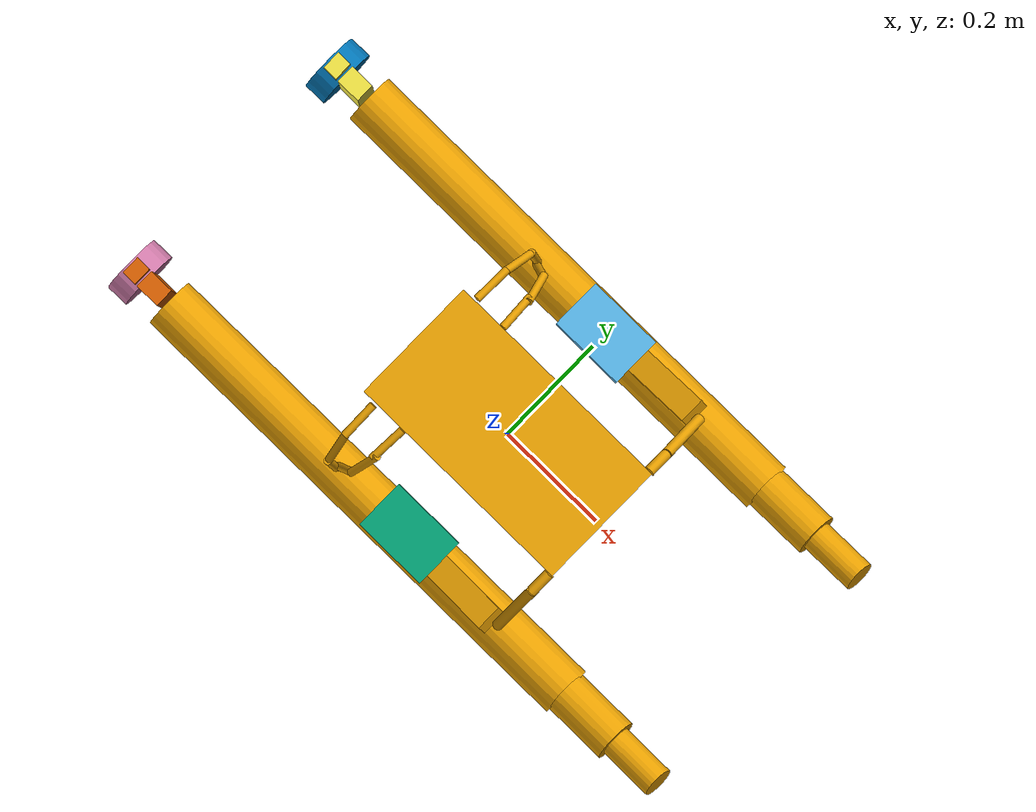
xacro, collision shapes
<?xml version="1.0"?>
<robot xmlns:xacro="http://ros.org/wiki/xacro" name="kaboat_hull">

  <!-- ===== 크기 파라미터 ===== -->
  <xacro:property name="target_length" value="1.1"/>   <!-- 원하는 세로 길이 [m] -->
  <xacro:property name="base_length"   value="4.9"/>   <!-- VRX WAM-V 원본 길이 [m] (고정) -->
  <xacro:property name="s"             value="${target_length / base_length}"/>

  <xacro:property name="mass_factor" value="1.0"/>

  <xacro:property name="namespace" value="wamv" scope="global"/>

  <!-- ===================================================================
       선체 base_link (충돌형상은 원본을 s 배로 축소)
  ==================================================================== -->
  <xacro:macro name="main_collisions" params="prefix reflect:=1">
    <!-- Main float -->
    <collision name="${prefix}_float">
      <origin xyz="${-0.4*s} ${1.03*reflect*s} ${0.2*s}" rpy="${0*reflect} 1.57 0" />
      <geometry><cylinder length="${4*s}" radius="${0.2*s}" /></geometry>
    </collision>
    <collision name="${prefix}_mid_float">
      <origin xyz="${1.85*s} ${1.03*reflect*s} ${0.3*s}" rpy="${0*reflect} 1.38 0" />
      <geometry><cylinder length="${0.5*s}" radius="${0.17*s}" /></geometry>
    </collision>
    <collision name="${prefix}_front_float">
      <origin xyz="${2.3*s} ${1.03*reflect*s} ${0.4*s}" rpy="${0*reflect} 1.3 0" />
      <geometry><cylinder length="${0.45*s}" radius="${0.12*s}" /></geometry>
    </collision>
    <!-- Front beam -->
    <collision name="front_${prefix}_beam_lower">
      <origin xyz="${0.9*s} ${0.85*reflect*s} ${1*s}" rpy="${0.78*reflect} 0 0" />
      <geometry><cylinder length="${0.5*s}" radius="${0.04*s}" /></geometry>
    </collision>
    <collision name="front_${prefix}_beam_upper">
      <origin xyz="${0.9*s} ${0.6*reflect*s} ${1.18*s}" rpy="${1.35*reflect} 0 0" />
      <geometry><cylinder length="${0.2*s}" radius="${0.04*s}" /></geometry>
    </collision>
    <!-- Mid beam -->
    <collision name="mid_${prefix}_beam_lower">
      <origin xyz="${-0.65*s} ${0.99*reflect*s} ${0.7*s}" rpy="${0.1*reflect} 0.25 0" />
      <geometry><cylinder length="${0.45*s}" radius="${0.03*s}" /></geometry>
    </collision>
    <collision name="mid_${prefix}_beam_medium">
      <origin xyz="${-0.57*s} ${0.87*reflect*s} ${1.05*s}" rpy="${0.75*reflect} 0.25 0" />
      <geometry><cylinder length="${0.32*s}" radius="${0.03*s}" /></geometry>
    </collision>
    <collision name="mid_${prefix}_beam_upper">
      <origin xyz="${-0.55*s} ${0.65*reflect*s} ${1.17*s}" rpy="${1.35*reflect} 0.25 0" />
      <geometry><cylinder length="${0.3*s}" radius="${0.03*s}" /></geometry>
    </collision>
    <!-- Rear beam -->
    <collision name="rear_${prefix}_beam_lower">
      <origin xyz="${-0.74*s} ${1.03*reflect*s} ${0.7*s}" rpy="${0*reflect} -0.15 0" />
      <geometry><cylinder length="${0.45*s}" radius="${0.03*s}" /></geometry>
    </collision>
    <collision name="rear_${prefix}_beam_medium">
      <origin xyz="${-0.79*s} ${0.91*reflect*s} ${1.05*s}" rpy="${0.75*reflect} -0.15 0" />
      <geometry><cylinder length="${0.32*s}" radius="${0.03*s}" /></geometry>
    </collision>
    <collision name="rear_${prefix}_beam_upper">
      <origin xyz="${-0.81*s} ${0.67*reflect*s} ${1.18*s}" rpy="${1.45*reflect} -0.15 0" />
      <geometry><cylinder length="${0.3*s}" radius="${0.03*s}" /></geometry>
    </collision>
    <!-- Joint -->
    <collision name="${prefix}_joint">
      <origin xyz="${0.58*s} ${1.03*reflect*s} ${0.6*s}" rpy="${0*reflect} -0.6 0" />
      <geometry><box size="${0.65*s} ${0.2*s} ${0.1*s}" /></geometry>
    </collision>
  </xacro:macro>

  <link name="${namespace}/base_link">
    <visual>
      <geometry>
        <mesh filename="package://wamv_description/models/WAM-V-Base/mesh/WAM-V-Base.dae"
              scale="${s} ${s} ${s}"/>
      </geometry>
    </visual>

    <xacro:main_collisions prefix="left"  reflect="1" />
    <xacro:main_collisions prefix="right" reflect="-1" />

    <!-- Top base -->
    <collision name="top_base">
      <origin xyz="0 0 ${1.25*s}" rpy="0 0 0" />
      <geometry><box size="${1.85*s} ${1*s} ${0.1*s}" /></geometry>
    </collision>

    <inertial>
      <mass value="${180.0 * s**3 * mass_factor}"/>
      <inertia ixx="${120.0 * s**5}" ixy="0.0" ixz="0.0"
               iyy="${393.0 * s**5}" iyz="0.0" izz="${446.0 * s**5}"/>
    </inertial>
  </link>

  <gazebo>
    <enable_wind>true</enable_wind>
  </gazebo>

  <gazebo reference="${namespace}/base_link">
    <visual>
      <material>
        <diffuse>1.0 1.0 1.0</diffuse>
        <specular>1.0 1.0 1.0</specular>
        <pbr>
          <metal>
            <albedo_map>model://wamv_description/models/WAM-V-Base/mesh/WAM-V_Albedo.png</albedo_map>
            <normal_map>model://wamv_description/models/WAM-V-Base/mesh/WAM-V_Normal.png</normal_map>
            <roughness_map>model://wamv_description/models/WAM-V-Base/mesh/WAM-V_Roughness.png</roughness_map>
            <metalness_map>model://wamv_description/models/WAM-V-Base/mesh/WAM-V_Metalness.png</metalness_map>
          </metal>
        </pbr>
      </material>
    </visual>

    <sensor type="contact" name="contact_sensor">
      <contact>
        <collision>${namespace}/base_link_fixed_joint_lump__top_base_collision_24</collision>
        <collision>${namespace}/base_link_fixed_joint_lump__left_float_collision</collision>
        <collision>${namespace}/base_link_fixed_joint_lump__left_mid_float_collision_1</collision>
        <collision>${namespace}/base_link_fixed_joint_lump__left_front_float_collision_2</collision>
        <collision>${namespace}/base_link_fixed_joint_lump__right_float_collision_12</collision>
        <collision>${namespace}/base_link_fixed_joint_lump__right_mid_float_collision_13</collision>
        <collision>${namespace}/base_link_fixed_joint_lump__right_front_float_collision_14</collision>
        <topic>/vrx/contacts</topic>
      </contact>
      <always_on>1</always_on>
      <update_rate>5</update_rate>
    </sensor>
  </gazebo>

  <!-- ===================================================================
       배터리 (질량 ∝ s^3, 위치/치수 ∝ s)
  ==================================================================== -->
  <xacro:macro name="battery" params="prefix position">
    <link name="${namespace}/${prefix}_battery_link">
      <visual>
        <origin xyz="0 ${-1.03*s} ${-0.45*s}" rpy="0 0 0"/>
        <geometry>
          <mesh filename="package://vrx_gazebo/models/battery/mesh/battery.dae"
                scale="${s} ${s} ${s}"/>
        </geometry>
      </visual>
      <collision name="${prefix}_battery_collision">
        <origin xyz="0 0 ${0.15*s}" rpy="0 0 0"/>
        <geometry><box size="${0.6*s} ${0.4*s} ${0.31*s}"/></geometry>
      </collision>
      <inertial>
        <origin xyz="0 0 ${0.15*s}" rpy="0 0 0"/>
        <mass value="${23.5 * s**3 * mass_factor}"/>
        <inertia ixx="${0.5015291666666667 * s**5}"
                 iyy="${0.8931958333333333 * s**5}"
                 izz="${1.0183333333333333 * s**5}"
                 ixy="0" ixz="0" iyz="0"/>
      </inertial>
    </link>
    <joint name="${namespace}/${prefix}_chasis_battery_joint" type="fixed">
      <origin xyz="${position}" rpy="0 0 0"/>
      <parent link="${namespace}/base_link"/>
      <child link="${namespace}/${prefix}_battery_link"/>
    </joint>
  </xacro:macro>

  <xacro:battery prefix="left"  position="0 ${1*s} ${0.45*s}"/>
  <xacro:battery prefix="right" position="0 ${-1*s} ${0.45*s}"/>

  <!-- ===================================================================
       엔진 + 프로펠러 (치수/위치 ∝ s, 질량 ∝ s^3, 관성 ∝ s^5)
  ==================================================================== -->
  <xacro:macro name="engine" params="prefix position">
    <link name="${namespace}/${prefix}_engine_link">
      <visual>
        <geometry>
          <mesh filename="package://wamv_description/models/engine/mesh/engine.dae"
                scale="${s} ${s} ${s}"/>
        </geometry>
      </visual>
      <collision name="${prefix}_engine_vertical_axis_collision">
        <origin xyz="${-0.16*s} 0 ${-0.24*s}" rpy="0 0 0" />
        <geometry><box size="${0.2*s} ${0.15*s} ${0.83*s}" /></geometry>
      </collision>
      <collision name="${prefix}_engine_rear_end_collision">
        <origin xyz="${-0.34*s} 0 ${0.12*s}" rpy="0 0 0" />
        <geometry><box size="${0.12*s} ${0.15*s} ${0.12*s}" /></geometry>
      </collision>
      <inertial>
        <mass value="${15 * s**3 * mass_factor}"/>
        <inertia ixx="${0.889245 * s**5}" ixy="0.0" ixz="0.0"
                 iyy="${0.911125 * s**5}" iyz="0.0" izz="${0.078125 * s**5}"/>
      </inertial>
    </link>

    <link name="${namespace}/${prefix}_propeller_link">
      <visual>
        <geometry>
          <mesh filename="package://wamv_description/models/propeller/mesh/propeller.dae"
                scale="${s} ${s} ${s}"/>
        </geometry>
      </visual>
      <collision name="${prefix}_propeller_collision">
        <origin xyz="${-0.08*s} 0 0" rpy="0 1.57 0" />
        <geometry><cylinder length="${0.18*s}" radius="${0.24*s}" /></geometry>
      </collision>
      <inertial>
        <mass value="${0.5 * s**3 * mass_factor}"/>
        <inertia ixx="${0.008545 * s**5}" ixy="0.0" ixz="0.0"
                 iyy="${0.008545 * s**5}" iyz="0.0" izz="${0.0144 * s**5}"/>
      </inertial>
    </link>

    <joint name="${namespace}/${prefix}_chassis_engine_joint" type="revolute">
      <axis xyz="0 0 1"/>
      <limit lower="${-pi}" upper="${pi}" effort="10" velocity="10"/>
      <origin xyz="${position}" rpy="0 0 0"/>
      <parent link="${namespace}/base_link"/>
      <child link="${namespace}/${prefix}_engine_link"/>
    </joint>

    <joint name="${namespace}/${prefix}_engine_propeller_joint" type="continuous">
      <axis rpy="0 0 0" xyz="1 0 0"/>
      <parent link="${namespace}/${prefix}_engine_link"/>
      <child link="${namespace}/${prefix}_propeller_link"/>
      <origin rpy="0 0 0" xyz="${-0.278156*s} 0 ${-0.509371*s}"/>
      <limit effort="100" velocity="100" />
      <dynamics friction="0.05" damping="0.05" />
    </joint>
  </xacro:macro>

  <xacro:engine prefix="left"  position="${-2.373776*s} ${1.027135*s} ${0.318237*s}" />
  <xacro:engine prefix="right" position="${-2.373776*s} ${-1.027135*s} ${0.318237*s}" />

  <!-- ===================================================================
       추력 플러그인 (프로펠러 직경 ∝ s, 최대 추력 ∝ s^2)
  ==================================================================== -->
  <xacro:macro name="thruster_plugin" params="name">
    <gazebo>
      <plugin filename="gz-sim-thruster-system" name="gz::sim::systems::Thruster">
        <joint_name>${namespace}/${name}_engine_propeller_joint</joint_name>
        <thrust_coefficient>0.004422</thrust_coefficient>
        <fluid_density>1000</fluid_density>
        <propeller_diameter>${0.2 * s}</propeller_diameter>
        <velocity_control>true</velocity_control>
        <!-- 원본 max = ((x_u + x_uu*Vmax)*Vmax)/2 = 2353.53; 스케일 × s^2 -->
        <max_thrust_cmd>${(((51.3 + 72.4*7.71667) * 7.71667) / 2) * s**2}</max_thrust_cmd>
        <namespace>${namespace}</namespace>
        <topic>thrusters/${name}/thrust</topic>
        <name>${name}</name>
      </plugin>
      <plugin filename="gz-sim-joint-position-controller-system"
              name="gz::sim::systems::JointPositionController">
        <joint_name>${namespace}/${name}_chassis_engine_joint</joint_name>
        <use_velocity_commands>true</use_velocity_commands>
        <topic>${namespace}/thrusters/${name}/pos</topic>
        <name>${name}</name>
      </plugin>
    </gazebo>
  </xacro:macro>

  <xacro:thruster_plugin name="left" />
  <xacro:thruster_plugin name="right" />

  <!-- ===================================================================
       부력(Surface) + 유체동역학(SimpleHydrodynamics)
  ==================================================================== -->
  <gazebo>
    <!-- Left hull -->
    <plugin filename="libSurface.so" name="vrx::Surface">
      <link_name>${namespace}/base_link</link_name>
      <hull_length>${4.9 * s}</hull_length>
      <hull_radius>${0.213 * s}</hull_radius>
      <fluid_level>0</fluid_level>
      <points>
        <point>${0.6*s} ${1.03*s} 0</point>
        <point>${-1.4*s} ${1.03*s} 0</point>
      </points>
      <wavefield><topic>/vrx/wavefield/parameters</topic></wavefield>
    </plugin>
    <!-- Right hull -->
    <plugin filename="libSurface.so" name="vrx::Surface">
      <link_name>${namespace}/base_link</link_name>
      <hull_length>${4.9 * s}</hull_length>
      <hull_radius>${0.213 * s}</hull_radius>
      <fluid_level>0</fluid_level>
      <points>
        <point>${0.6*s} ${-1.03*s} 0</point>
        <point>${-1.4*s} ${-1.03*s} 0</point>
      </points>
      <wavefield><topic>/vrx/wavefield/parameters</topic></wavefield>
    </plugin>

    <plugin filename="libSimpleHydrodynamics.so" name="vrx::SimpleHydrodynamics">
      <link_name>${namespace}/base_link</link_name>
      <!-- Added mass (원본 0 유지) -->
      <xDotU>0.0</xDotU>
      <yDotV>0.0</yDotV>
      <nDotR>0.0</nDotR>
      <!-- 병진 드래그 ∝ s^2 -->
      <xU>${100.0 * s**2}</xU>
      <xUU>${150.0 * s**2}</xUU>
      <yV>${100.0 * s**2}</yV>
      <yVV>${100.0 * s**2}</yVV>
      <zW>${500.0 * s**2}</zW>
      <!-- 회전 드래그 ∝ s^4 -->
      <kP>${300.0 * s**4}</kP>
      <kPP>${600.0 * s**4}</kPP>
      <mQ>${900.0 * s**4}</mQ>
      <mQQ>${900.0 * s**4}</mQQ>
      <nR>${800.0 * s**4}</nR>
      <nRR>${800.0 * s**4}</nRR>
    </plugin>
  </gazebo>

  <!-- ===================================================================
       TF / 상태 퍼블리셔 (스케일과 무관)
  ==================================================================== -->
  <gazebo>
    <plugin filename="libgz-sim-pose-publisher-system.so"
            name="gz::sim::systems::PosePublisher">
      <publish_link_pose>false</publish_link_pose>
      <publish_sensor_pose>true</publish_sensor_pose>
      <publish_collision_pose>false</publish_collision_pose>
      <publish_visual_pose>false</publish_visual_pose>
      <publish_nested_model_pose>false</publish_nested_model_pose>
      <publish_model_pose>false</publish_model_pose>
      <use_pose_vector_msg>true</use_pose_vector_msg>
      <static_publisher>false</static_publisher>
      <static_update_frequency>1</static_update_frequency>
    </plugin>
    <plugin filename="gz-sim-joint-state-publisher-system"
            name="gz::sim::systems::JointStatePublisher">
    </plugin>
  </gazebo>

</robot>
